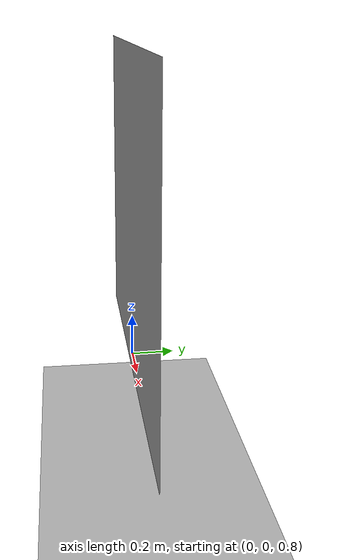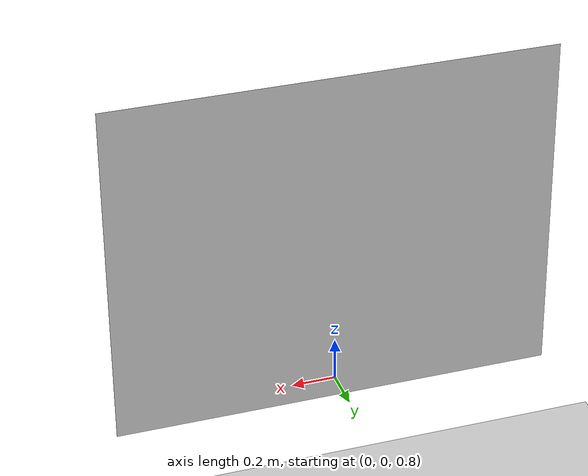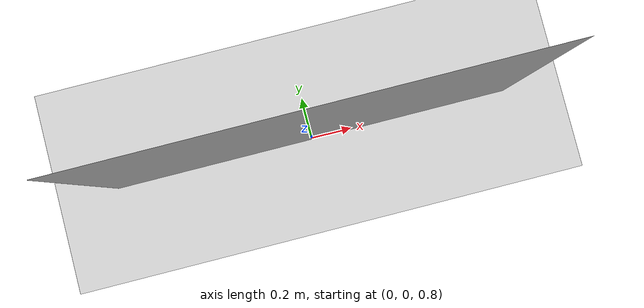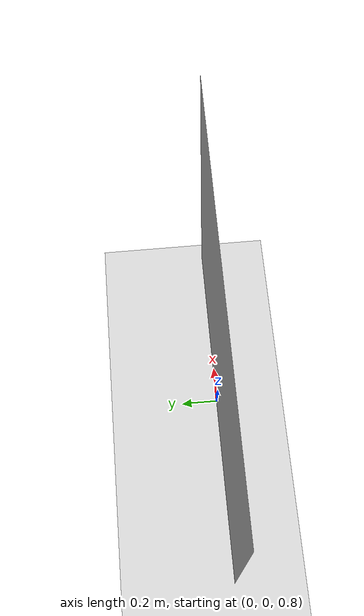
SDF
<?xml version="1.0"?>
<sdf version="1.5">
  <world name="default">
    <include>
      <uri>model://ground_plane</uri>
    </include>
    <include>
      <uri>model://sun</uri>
    </include>
    <model name="nasa_arena">
      <pose>0 0 0  0 0 0</pose>
      <static>true</static>
      <link name="body">
        <inertial>
          <mass>0.1</mass>
          <inertia>
            <ixx>1</ixx>
            <ixy>0</ixy>
            <ixz>0</ixz>
            <iyy>1</iyy>
            <iyz>0</iyz>
            <izz>1</izz>
          </inertia>
        </inertial>
        <visual name="Arena_Visual">
          <geometry>
            <mesh><uri>model://amee_gazebo/meshes/chessboard.dae</uri></mesh>
          </geometry>
        </visual>
        <collision name="Arena_Surface">
          <geometry>
            <mesh><uri>model://amee_gazebo/meshes/chessboard.dae</uri></mesh>
          </geometry>
          <surface>
          <contact>
              <ode>
                <max_vel>1.0</max_vel>
            </ode>
        </contact>
        </surface>
        </collision>
        <friction>
            <ode>
                <mu>50.0</mu>
                <mu2>50.0</mu2>
            </ode>
        </friction>
      </link>
    </model>
  </world>
</sdf>
